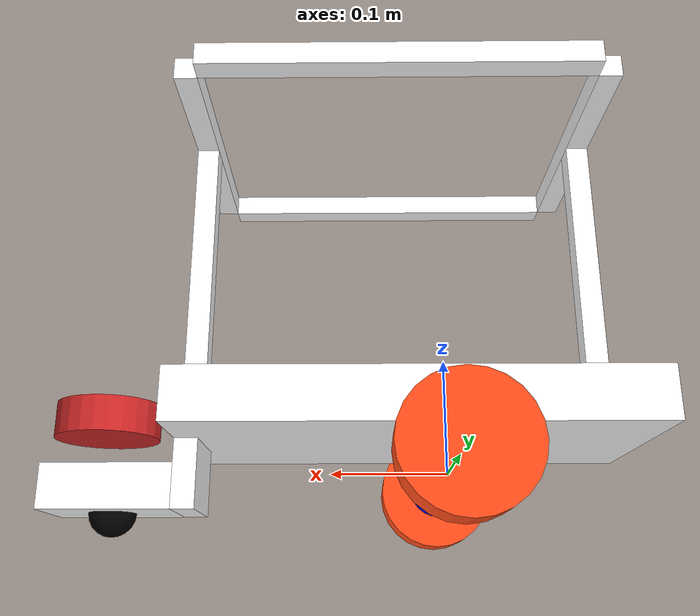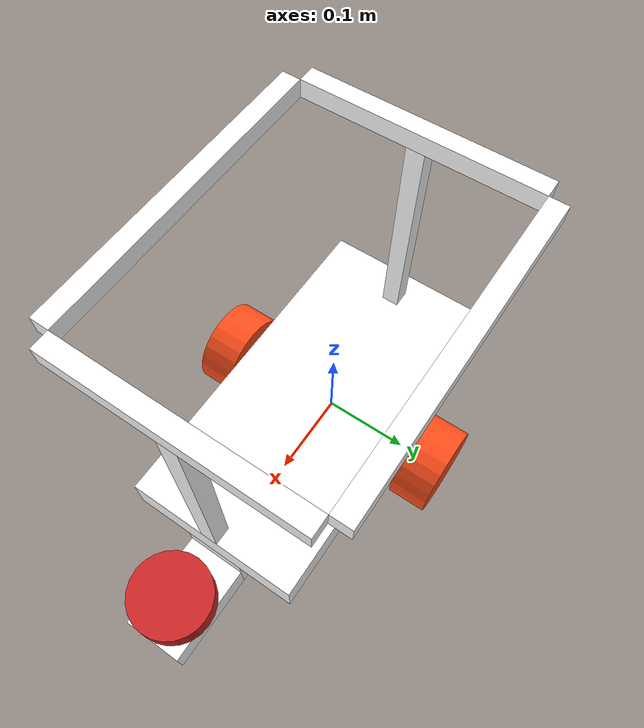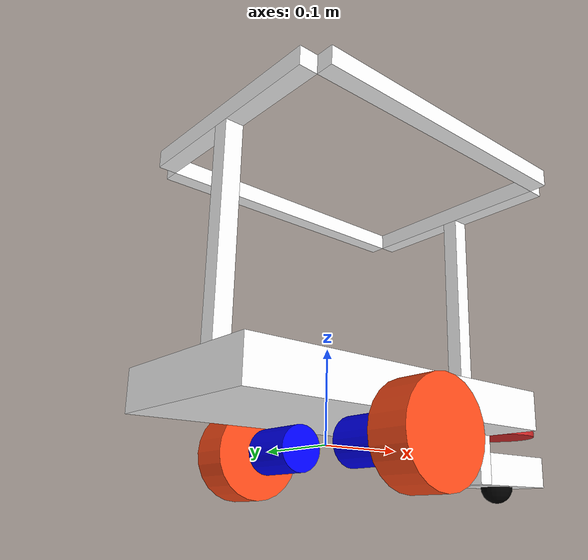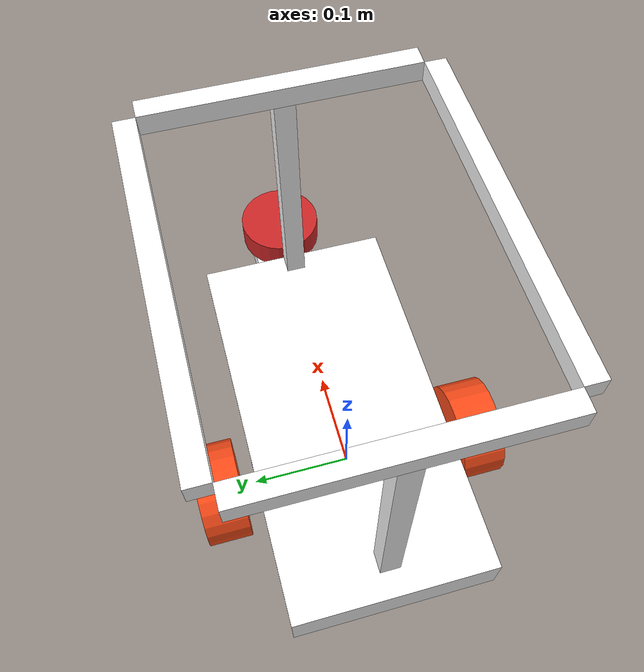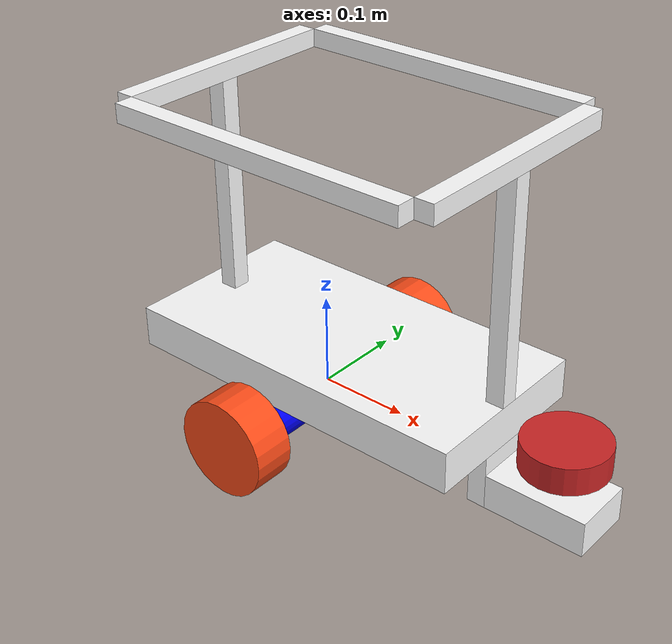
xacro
<?xml version="1.0"?>
<robot xmlns:xacro="http://www.ros.org/wiki/xacro" name="robot">

    <xacro:arg name="use_ros2_control" default="true"/>
    <xacro:arg name="sim_mode" default="false"/>

    <xacro:include filename="robot_core.xacro"/>
    <xacro:include filename="robot_profiles.xacro"/>

    <xacro:if value="$(arg use_ros2_control)">
        <xacro:include filename="ros2_control.xacro"/>
    </xacro:if>
    <xacro:unless value="$(arg use_ros2_control)">
        <xacro:include filename="gazebo_control.xacro"/>
    </xacro:unless>

    <xacro:include filename="lidar.xacro"/>

</robot>

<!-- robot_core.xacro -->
<robot xmlns:xacro="http://www.ros.org/wiki/xacro">

    <xacro:include filename="inertial_macros.xacro"/>

    <material name="white">
        <color rgba="1 1 1 1"/>
    </material>

    <material name="orange">
        <color rgba="1 0.3 0.1 1"/>
    </material>

    <material name="blue">
        <color rgba="0 0 1 1"/>
    </material>

    <material name="black">
        <color rgba="0 0 0 1"/>
    </material>

    <material name="red">
        <color rgba="1 0 0 1"/>
    </material>

    <!-- BASE LINK -->

    <link name="base_link">
    </link>

    <joint name="base_footprint_joint" type="fixed">
        <parent link="base_link"/>
        <child link="base_footprint"/>
        <origin xyz="0 0 0" rpy="0.0 0.0 0.0"/>

    </joint>

    <link name="base_footprint">

    </link>

    <!-- CHASSIS LINK -->

    <joint name="chassis_joint" type="fixed">
        <parent link="base_link"/>
        <child link="chassis"/>
        <origin xyz="-0.17 0.0 0.0255"/>

    </joint>

    <link name="chassis">
        <visual>
            <origin xyz="0.2 0.0 0.0225"/>
            <geometry>
                <box size="0.4 0.2 0.045"/>
            </geometry>
            <material name="white"/>
        </visual>
        <collision>
            <origin xyz="0.2 0.0 0.0225"/>
            <geometry>
                <box size="0.4 0.2 0.045"/>
            </geometry>
        </collision>
        <xacro:inertial_box mass="0.6" x="0.4" y="0.2" z="0.045">
            <origin xyz="0.2 0.0 0.0225" rpy="0.0 0.0 0.0"/>
        </xacro:inertial_box>
    </link>

    <gazebo reference="chassis">
        <material>
            Gazebo/White
        </material>
    </gazebo>

    <!-- LEFT MOTOR LINK -->

    <joint name="left_motor_joint" type="fixed">
        <parent link="base_link"/>
        <child link="left_motor"/>
        <origin xyz="0.0 0.07 0.0" rpy="${-pi/2} 0.0 0.0"/>
    </joint>

    <link name="left_motor">
        <visual>
            <geometry>
                <cylinder radius="0.0255" length="0.06"/>
            </geometry>
            <material name="blue"/>
        </visual>
        <collision>
            <geometry>
                <cylinder radius="0.0255" length="0.06"/>
            </geometry>
        </collision>
        <xacro:inertial_cylinder mass="0.1" length="0.06" radius="0.0255">
            <origin xyz="0.0 0.0 0.0" rpy="0.0 0.0 0.0"/>
        </xacro:inertial_cylinder>
    </link>

    <gazebo reference="left_motor">
        <material>
            Gazebo/Blue
        </material>
    </gazebo>

    <!-- LEFT MOTOR SHAFT LINK -->

    <joint name="left_shaft_joint" type="fixed">
        <parent link="left_motor"/>
        <child link="left_shaft"/>
        <origin xyz="0.0 0.0 0.038"/>
    </joint>

    <link name="left_shaft">
        <visual>
            <geometry>
                <cylinder radius="0.005" length="0.016"/>
            </geometry>
            <material name="blue"/>
        </visual>
        <collision>
            <geometry>
                <cylinder radius="0.005" length="0.016"/>
            </geometry>
        </collision>
        <xacro:inertial_cylinder mass="0.005" length="0.016" radius="0.005">
            <origin xyz="0.0 0.0 0.0" rpy="0.0 0.0 0.0"/>
        </xacro:inertial_cylinder>
    </link>

    <gazebo reference="left_shaft">
        <material>
            Gazebo/Blue
        </material>
    </gazebo>

    <!-- LEFT WHEEL LINK -->

    <joint name="left_wheel_joint" type="continuous">
        <parent link="base_link"/>
        <child link="left_wheel"/>
        <origin xyz="0.0 0.1385 0.0" rpy="${-pi/2} 0.0 0.0"/>
        <axis xyz="0 0 1"/>
    </joint>

    <link name="left_wheel">
        <visual>
            <geometry>
                <cylinder radius="0.0525" length="0.045"/>
            </geometry>
            <material name="orange"/>
        </visual>
        <collision>
            <geometry>
                <sphere radius="0.0525"/>
            </geometry>
        </collision>
        <xacro:inertial_cylinder mass="0.1" length="0.045" radius="0.0525">
            <origin xyz="0.0 0.0 0.0" rpy="0.0 0.0 0.0"/>
        </xacro:inertial_cylinder>
    </link>

    <gazebo reference="left_wheel">
        <material>
            Gazebo/Orange
        </material>
    </gazebo>

    <!-- RIGHT MOTOR LINK -->

    <joint name="right_motor_joint" type="fixed">
        <parent link="base_link"/>
        <child link="right_motor"/>
        <origin xyz="0.0 -0.07 0.0" rpy="${pi/2} 0.0 0.0"/>
    </joint>

    <link name="right_motor">
        <visual>
            <geometry>
                <cylinder radius="0.0255" length="0.06"/>
            </geometry>
            <material name="blue"/>
        </visual>
        <collision>
            <geometry>
                <cylinder radius="0.0255" length="0.06"/>
            </geometry>
        </collision>
        <xacro:inertial_cylinder mass="0.1" length="0.06" radius="0.0255">
            <origin xyz="0.0 0.0 0.0" rpy="0.0 0.0 0.0"/>
        </xacro:inertial_cylinder>
    </link>

    <gazebo reference="right_motor">
        <material>
            Gazebo/Blue
        </material>
    </gazebo>

    <!-- RIGHT MOTOR SHAFT LINK -->

    <joint name="right_shaft_joint" type="fixed">
        <parent link="right_motor"/>
        <child link="right_shaft"/>
        <origin xyz="0.0 0.0 0.038"/>
    </joint>

    <link name="right_shaft">
        <visual>
            <geometry>
                <cylinder radius="0.005" length="0.016"/>
            </geometry>
            <material name="blue"/>
        </visual>
        <collision>
            <geometry>
                <cylinder radius="0.005" length="0.016"/>
            </geometry>
        </collision>
        <xacro:inertial_cylinder mass="0.005" length="0.016" radius="0.005">
            <origin xyz="0.0 0.0 0.0" rpy="0.0 0.0 0.0"/>
        </xacro:inertial_cylinder>
    </link>

    <gazebo reference="right_shaft">
        <material>
            Gazebo/Blue
        </material>
    </gazebo>

    <!-- RIGHT WHEEL LINK -->

    <joint name="right_wheel_joint" type="continuous">
        <parent link="base_link"/>
        <child link="right_wheel"/>
        <origin xyz="0.0 -0.1385 0.0" rpy="${pi/2} 0.0 0.0"/>
        <axis xyz="0 0 -1"/>
    </joint>

    <link name="right_wheel">
        <visual>
            <geometry>
                <cylinder radius="0.0525" length="0.045"/>
            </geometry>
            <material name="orange"/>
        </visual>
        <collision>
            <geometry>
                <sphere radius="0.0525"/>
            </geometry>
        </collision>
        <xacro:inertial_cylinder mass="0.1" length="0.045" radius="0.0525">
            <origin xyz="0.0 0.0 0.0" rpy="0.0 0.0 0.0"/>
        </xacro:inertial_cylinder>
    </link>

    <gazebo reference="right_wheel">
        <material>
            Gazebo/Orange
        </material>
    </gazebo>

    <!-- CASTER WHEEL LINK -->

    <joint name="cws_1_joint" type="fixed">
        <parent link="chassis"/>
        <child link="cws_1"/>
        <origin xyz="0.39 0.0 -0.029" rpy="0.0 0.0 0.0"/>
    </joint>

    <link name="cws_1">
        <visual>
            <geometry>
                <box size="0.02 0.068 0.058"/>
            </geometry>
            <material name="white"/>
        </visual>
        <collision>
            <geometry>
                <box size="0.02 0.068 0.058"/>
            </geometry>
        </collision>
        <xacro:inertial_box mass="0.01" x="0.02" y="0.068" z="0.058">
            <origin xyz="0.0 0.0 0.0" rpy="0.0 0.0 0.0"/>
        </xacro:inertial_box>
    </link>

    <joint name="cws_2_joint" type="fixed">
        <parent link="cws_1"/>
        <child link="cws_2"/>
        <origin xyz="0.065 0.0 -0.01" rpy="0.0 0.0 0.0"/>
    </joint>

    <link name="cws_2">
        <visual>
            <geometry>
                <box size="0.11 0.068 0.038"/>
            </geometry>
            <material name="white"/>
        </visual>
        <collision>
            <geometry>
                <box size="0.11 0.068 0.038"/>
            </geometry>
        </collision>
        <xacro:inertial_box mass="0.05" x="0.11" y="0.068" z="0.038">
            <origin xyz="0.0 0.0 0.0" rpy="0.0 0.0 0.0"/>
        </xacro:inertial_box>
    </link>

    <joint name="caster_wheel_joint" type="fixed">
        <parent link="cws_2"/>
        <child link="caster_wheel"/>
        <origin xyz="0.0 0.0 -0.019" rpy="0.0 0.0 0.0"/>
    </joint>

    <link name="caster_wheel">
        <visual>
            <geometry>
                <sphere radius="0.02"/>
            </geometry>
            <material name="black"/>
        </visual>
        <collision>
            <geometry>
                <sphere radius="0.02"/>
            </geometry>
        </collision>
        <xacro:inertial_sphere mass="0.01" radius="0.02">
            <origin xyz="0.0 0.0 0.0" rpy="0.0 0.0 0.0"/>
        </xacro:inertial_sphere>
    </link>

    <gazebo reference="caster_wheel">
        <material>
            Gazebo/Black
        </material>
        <mu1 value="0.001"/>
        <mu2 value="0.001"/>
    </gazebo>

</robot>

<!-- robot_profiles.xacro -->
<robot xmlns:xacro="http://www.ros.org/wiki/xacro">

    <xacro:include filename="inertial_macros.xacro"/>

    <!-- PROFILE LINK -->

    <joint name="pro1_joint" type="fixed">
        <parent link="base_link"/>
        <child link="pro1"/>
        <origin xyz="-0.135 0.0 0.1905"/>

    </joint>

    <link name="pro1">
        <visual>
            <geometry>
                <box size="0.02 0.02 0.24"/>
            </geometry>
            <material name="white"/>
        </visual>
        <collision>
            <geometry>
                <box size="0.02 0.02 0.24"/>
            </geometry>
        </collision>
        <xacro:inertial_box mass="0.05" x="0.02" y="0.02" z="0.24">
            <origin xyz="0.0 0.0 0.0" rpy="0.0 0.0 0.0"/>
        </xacro:inertial_box>
    </link>

    <joint name="pro2_joint" type="fixed">
        <parent link="base_link"/>
        <child link="pro2"/>
        <origin xyz="0.22 0.0 0.1905"/>

    </joint>

    <link name="pro2">
        <visual>
            <geometry>
                <box size="0.02 0.02 0.24"/>
            </geometry>
            <material name="white"/>
        </visual>
        <collision>
            <geometry>
                <box size="0.02 0.02 0.24"/>
            </geometry>
        </collision>
        <xacro:inertial_box mass="0.05" x="0.02" y="0.02" z="0.24">
            <origin xyz="0.0 0.0 0.0" rpy="0.0 0.0 0.0"/>
        </xacro:inertial_box>
    </link>

    <joint name="pro3_joint" type="fixed">
        <parent link="pro1"/>
        <child link="pro3"/>
        <origin xyz="0.0 0.0 0.13"/>

    </joint>

    <link name="pro3">
        <visual>
            <geometry>
                <box size="0.02 0.255 0.02"/>
            </geometry>
            <material name="white"/>
        </visual>
        <collision>
            <geometry>
                <box size="0.02 0.255 0.02"/>
            </geometry>
        </collision>
        <xacro:inertial_box mass="0.05" x="0.02" y="0.255" z="0.02">
            <origin xyz="0.0 0.0 0.0" rpy="0.0 0.0 0.0"/>
        </xacro:inertial_box>
    </link>

    <joint name="pro4_joint" type="fixed">
        <parent link="pro2"/>
        <child link="pro4"/>
        <origin xyz="0.0 0.0 0.13"/>

    </joint>

    <link name="pro4">
        <visual>
            <geometry>
                <box size="0.02 0.255 0.02"/>
            </geometry>
            <material name="white"/>
        </visual>
        <collision>
            <geometry>
                <box size="0.02 0.255 0.02"/>
            </geometry>
        </collision>
        <xacro:inertial_box mass="0.05" x="0.02" y="0.255" z="0.02">
            <origin xyz="0.0 0.0 0.0" rpy="0.0 0.0 0.0"/>
        </xacro:inertial_box>
    </link>

    <joint name="pro5_joint" type="fixed">
        <parent link="pro3"/>
        <child link="pro5"/>
        <origin xyz="0.1775 -0.1375 0.0"/>

    </joint>

    <link name="pro5">
        <visual>
            <geometry>
                <box size="0.335 0.02 0.02"/>
            </geometry>
            <material name="white"/>
        </visual>
        <collision>
            <geometry>
                <box size="0.335 0.02 0.02"/>
            </geometry>
        </collision>
        <xacro:inertial_box mass="0.05" x="0.335" y="0.02" z="0.02">
            <origin xyz="0.0 0.0 0.0" rpy="0.0 0.0 0.0"/>
        </xacro:inertial_box>
    </link>

    <joint name="pro6_joint" type="fixed">
        <parent link="pro3"/>
        <child link="pro6"/>
        <origin xyz="0.1775 0.1375 0.0"/>

    </joint>

    <link name="pro6">
        <visual>
            <geometry>
                <box size="0.335 0.02 0.02"/>
            </geometry>
            <material name="white"/>
        </visual>
        <collision>
            <geometry>
                <box size="0.335 0.02 0.02"/>
            </geometry>
        </collision>
        <xacro:inertial_box mass="0.05" x="0.335" y="0.02" z="0.02">
            <origin xyz="0.0 0.0 0.0" rpy="0.0 0.0 0.0"/>
        </xacro:inertial_box>
    </link>

</robot>

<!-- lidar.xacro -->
<robot xmlns:xacro="http://www.ros.org/wiki/xacro">

    <joint name="laser_joint" type="fixed">
        <parent link="cws_2"/>
        <child link="laser_frame"/>
        <origin xyz="0.01 0.0 0.059" rpy="0.0 0.0 0.0"/>
    </joint>

    <link name="laser_frame">
        <visual>
            <geometry>
                <cylinder radius="0.045" length="0.03"/>
                <material name="red"/>
            </geometry>
        </visual>
        <collision>
            <geometry>
                <cylinder radius="0.045" length="0.03"/>
            </geometry>
        </collision>
        <xacro:inertial_cylinder mass="0.1" length="0.03" radius="0.045">
            <origin xyz="0.0 0.0 0.0" rpy="0.0 0.0 0.0"/>
        </xacro:inertial_cylinder>
    </link>

    <gazebo reference="laser_frame">
        <sensor name="laser" type="ray">
            <pose> 0 0 0 0 0 0 </pose>
            <visualize>true</visualize>
            <update_rate>10</update_rate>
            <ray>
                <scan>
                    <horizontal>
                        <samples>360</samples>
                        <resolution>1</resolution>
                        <min_angle>-2.14</min_angle>
                        <max_angle>2.14</max_angle>
                    </horizontal>
                </scan>
                <range>
                    <min>0.3</min>
                    <max>12</max>
                    <resolution>0.01</resolution>
                </range>
            </ray>
            <plugin name="laser_controller" filename="libgazebo_ros_ray_sensor.so">
                <ros>
                    <argument>~/out:=scan</argument>
                </ros>
                <output_type>sensor_msgs/LaserScan</output_type>
                <frame_name>laser_frame</frame_name>
            </plugin>
        </sensor>
        <material>
            Gazebo/Red
        </material>
    </gazebo>

</robot>
